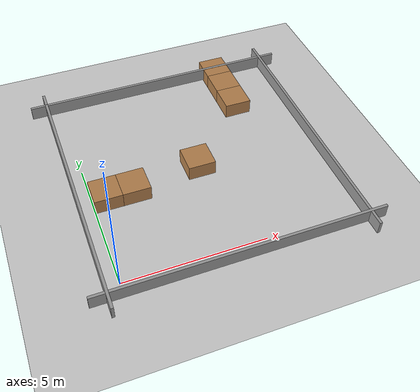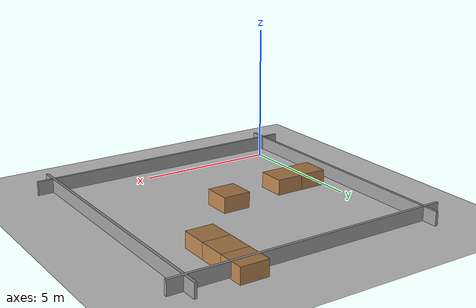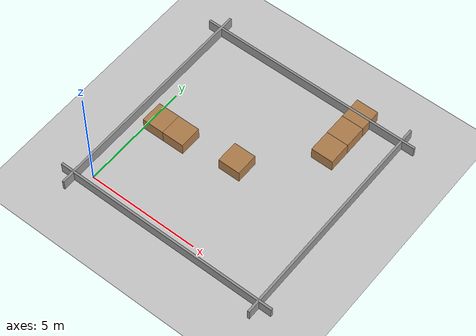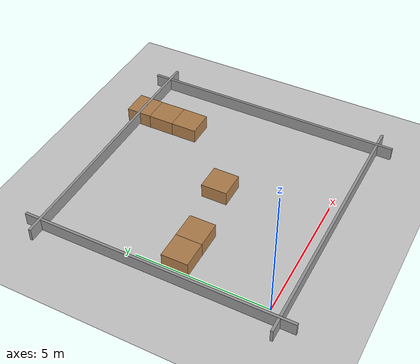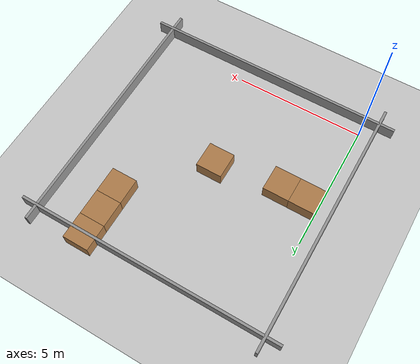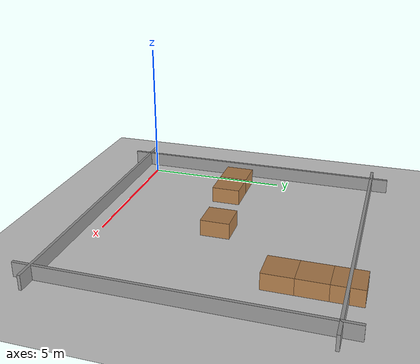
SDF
<sdf version="1.7">
 <world name="default">
  <light name="sun" type="directional">
   <pose>0 0 10 0 -0 0</pose>
   <diffuse>0.8 0.8 0.8 1</diffuse>
   <specular>0.1 0.1 0.1 1</specular>
   <attenuation>
    <range>1000</range>
    <constant>0.9</constant>
    <linear>0.01</linear>
    <quadratic>0.001</quadratic>
   </attenuation>
   <direction>-0.5 0.5 -1</direction>
   <spot><inner_angle>0</inner_angle><outer_angle>0</outer_angle><falloff>0</falloff></spot>
  </light>
  <model name="ground_plane">
   <pose>7.5 2.5 0 0 -0 0</pose>
   <static>1</static>
   <link name="link">
    <collision name="collision">
     <geometry><plane><normal>0 0 1</normal><size>100 100</size></plane></geometry>
     <surface><friction><ode><mu>100</mu><mu2>50</mu2></ode></friction></surface>
    </collision>
    <visual name="visual">
     <cast_shadows>0</cast_shadows>
     <geometry><plane><normal>0 0 1</normal><size>100 100</size></plane></geometry>
     <material>
      <script><uri>file://media/materials/scripts/gazebo.material</uri><name>Gazebo/Grey</name></script>
     </material>
    </visual>
   </link>
  </model>
  <gravity>0 0 -9.8</gravity>
  <magnetic_field>6e-06 2.3e-05 -4.2e-05</magnetic_field>
  <atmosphere type="adiabatic"/>
  <physics type="ode">
   <real_time_update_rate>1000.0</real_time_update_rate>
   <max_step_size>0.001</max_step_size>
   <real_time_factor>1</real_time_factor>
   <ode>
    <solver>
     <type>quick</type>
     <iters>150</iters>
     <precon_iters>0</precon_iters>
     <sor>1.400000</sor>
     <use_dynamic_moi_rescaling>1</use_dynamic_moi_rescaling>
    </solver>
    <constraints>
     <cfm>0.00001</cfm>
     <erp>0.2</erp>
     <contact_max_correcting_vel>2000.000000</contact_max_correcting_vel>
     <contact_surface_layer>0.01000</contact_surface_layer>
    </constraints>
   </ode>
  </physics>
  <scene><ambient>0.4 0.4 0.4 1</ambient><background>0.7 0.7 0.7 1</background><shadows>1</shadows></scene>
  <spherical_coordinates>
   <surface_model>EARTH_WGS84</surface_model>
   <latitude_deg>0</latitude_deg>
   <longitude_deg>0</longitude_deg>
   <elevation>0</elevation>
   <heading_deg>0</heading_deg>
  </spherical_coordinates>
  <model name="grey_wall">
   <static>1</static>
   <link name="link">
    <pose>0 0 1.4 0 -0 0</pose>
    <collision name="collision"><geometry><box><size>10.2 0.1 0.5</size></box></geometry></collision>
    <visual name="visual">
     <cast_shadows>0</cast_shadows>
     <geometry><box><size>10.2 0.1 0.5</size></box></geometry>
     <material>
      <script>
       <uri>model://grey_wall/materials/scripts</uri>
       <uri>model://grey_wall/materials/textures</uri>
       <name>vrc/grey_wall</name>
      </script>
     </material>
    </visual>
   </link>
   <pose>4 8.5 -1.1 0 -0 0</pose>
  </model>
  <model name="grey_wall_0">
   <static>1</static>
   <link name="link">
    <pose>0 0 1.4 0 -0 0</pose>
    <collision name="collision"><geometry><box><size>10.2 0.1 0.5</size></box></geometry></collision>
    <visual name="visual">
     <cast_shadows>0</cast_shadows>
     <geometry><box><size>10.2 0.1 0.5</size></box></geometry>
     <material>
      <script>
       <uri>model://grey_wall/materials/scripts</uri>
       <uri>model://grey_wall/materials/textures</uri>
       <name>vrc/grey_wall</name>
      </script>
     </material>
    </visual>
   </link>
   <pose>8.5 4 -1.1 0 -0 1.57</pose>
  </model>
  <model name="grey_wall_0_clone">
   <static>1</static>
   <link name="link">
    <pose>0 0 1.4 0 -0 0</pose>
    <collision name="collision"><geometry><box><size>10.2 0.1 0.5</size></box></geometry></collision>
    <visual name="visual">
     <cast_shadows>0</cast_shadows>
     <geometry><box><size>10.2 0.1 0.5</size></box></geometry>
     <material>
      <script>
       <uri>model://grey_wall/materials/scripts</uri>
       <uri>model://grey_wall/materials/textures</uri>
       <name>vrc/grey_wall</name>
      </script>
     </material>
    </visual>
   </link>
   <pose>-0.5 4 -1.1 0 -0 1.57</pose>
  </model>
  <model name="grey_wall_clone">
   <static>1</static>
   <link name="link">
    <pose>0 0 1.4 0 -0 0</pose>
    <collision name="collision"><geometry><box><size>10.2 0.1 0.5</size></box></geometry></collision>
    <visual name="visual">
     <cast_shadows>0</cast_shadows>
     <geometry><box><size>10.2 0.1 0.5</size></box></geometry>
     <material>
      <script>
       <uri>model://grey_wall/materials/scripts</uri>
       <uri>model://grey_wall/materials/textures</uri>
       <name>vrc/grey_wall</name>
      </script>
     </material>
    </visual>
   </link>
   <pose>4 -0.5 -1.1 0 -0 0</pose>
  </model>
  <model name="wood_cube_10cm_clone_1">
   <link name="link">
    <pose>1.50796 -2.63412 0.05 0 -0 0</pose>
    <inertial>
     <mass>0.5167</mass>
     <inertia>
      <ixx>0.00086117</ixx>
      <ixy>0</ixy>
      <ixz>0</ixz>
      <iyy>0.00086117</iyy>
      <iyz>0</iyz>
      <izz>0.00086117</izz>
     </inertia>
    </inertial>
    <visual name="visual">
     <geometry><box><size>1 1 1</size></box></geometry>
     <material>
      <script><uri>file://media/materials/scripts/gazebo.material</uri><name>Gazebo/Wood</name></script>
      <shader type="pixel"><normal_map>__default__</normal_map></shader>
      <ambient>1 1 1 1</ambient>
      <diffuse>1 1 1 1</diffuse>
      <specular>0.2 0.2 0.2 1</specular>
      <emissive>0 0 0 1</emissive>
     </material>
    </visual>
    <collision name="collision">
     <geometry><box><size>1.5 1.5 0.8</size></box></geometry>
     <surface>
      <friction>
       <ode><mu>1</mu><mu2>1</mu2><fdir1>0 0 0</fdir1><slip1>0</slip1><slip2>0</slip2></ode>
       <torsional>
        <coefficient>1</coefficient>
        <patch_radius>0</patch_radius>
        <surface_radius>0.01</surface_radius>
        <use_patch_radius>0</use_patch_radius>
        <ode><slip>0</slip></ode>
       </torsional>
      </friction>
      <bounce><restitution_coefficient>0</restitution_coefficient><threshold>1e+06</threshold></bounce>
      <contact>
       <collide_without_contact>0</collide_without_contact>
       <collide_without_contact_bitmask>1</collide_without_contact_bitmask>
       <collide_bitmask>1</collide_bitmask>
       <ode>
        <soft_cfm>0</soft_cfm>
        <soft_erp>0.2</soft_erp>
        <kp>100000</kp>
        <kd>100</kd>
        <max_vel>100</max_vel>
        <min_depth>0.001</min_depth>
       </ode>
       <bullet>
        <split_impulse>1</split_impulse>
        <split_impulse_penetration_threshold>-0.01</split_impulse_penetration_threshold>
        <soft_cfm>0</soft_cfm>
        <soft_erp>0.2</soft_erp>
        <kp>100000</kp>
        <kd>100</kd>
       </bullet>
      </contact>
     </surface>
    </collision>
   </link>
   <static>1</static>
   <pose>2.5 6.5 -0.001013 0 -0 0</pose>
  </model>
  <model name="wood_cube_10cm_clone_0">
   <link name="link">
    <pose>0 0 0.05 0 -0 0</pose>
    <inertial>
     <mass>0.5167</mass>
     <inertia>
      <ixx>0.00086117</ixx>
      <ixy>0</ixy>
      <ixz>0</ixz>
      <iyy>0.00086117</iyy>
      <iyz>0</iyz>
      <izz>0.00086117</izz>
     </inertia>
    </inertial>
    <visual name="visual">
     <geometry><box><size>1 1 1</size></box></geometry>
     <material>
      <script><uri>file://media/materials/scripts/gazebo.material</uri><name>Gazebo/Wood</name></script>
      <shader type="pixel"><normal_map>__default__</normal_map></shader>
      <ambient>1 1 1 1</ambient>
      <diffuse>1 1 1 1</diffuse>
      <specular>0.2 0.2 0.2 1</specular>
      <emissive>0 0 0 1</emissive>
     </material>
    </visual>
    <collision name="collision">
     <geometry><box><size>1.5 1.5 0.8</size></box></geometry>
     <surface>
      <friction>
       <ode><mu>1</mu><mu2>1</mu2><fdir1>0 0 0</fdir1><slip1>0</slip1><slip2>0</slip2></ode>
       <torsional>
        <coefficient>1</coefficient>
        <patch_radius>0</patch_radius>
        <surface_radius>0.01</surface_radius>
        <use_patch_radius>0</use_patch_radius>
        <ode><slip>0</slip></ode>
       </torsional>
      </friction>
      <bounce><restitution_coefficient>0</restitution_coefficient><threshold>1e+06</threshold></bounce>
      <contact>
       <collide_without_contact>0</collide_without_contact>
       <collide_without_contact_bitmask>1</collide_without_contact_bitmask>
       <collide_bitmask>1</collide_bitmask>
       <ode>
        <soft_cfm>0</soft_cfm>
        <soft_erp>0.2</soft_erp>
        <kp>100000</kp>
        <kd>100</kd>
        <max_vel>100</max_vel>
        <min_depth>0.001</min_depth>
       </ode>
       <bullet>
        <split_impulse>1</split_impulse>
        <split_impulse_penetration_threshold>-0.01</split_impulse_penetration_threshold>
        <soft_cfm>0</soft_cfm>
        <soft_erp>0.2</soft_erp>
        <kp>100000</kp>
        <kd>100</kd>
       </bullet>
      </contact>
     </surface>
    </collision>
   </link>
   <static>1</static>
   <pose>0.5 3.5 -0.001013 0 -0 0</pose>
  </model>
  <model name="wood_cube_10cm_clone_0_clone">
   <link name="link">
    <pose>0 0 0.05 0 -0 0</pose>
    <inertial>
     <mass>0.5167</mass>
     <inertia>
      <ixx>0.00086117</ixx>
      <ixy>0</ixy>
      <ixz>0</ixz>
      <iyy>0.00086117</iyy>
      <iyz>0</iyz>
      <izz>0.00086117</izz>
     </inertia>
    </inertial>
    <visual name="visual">
     <geometry><box><size>1 1 1</size></box></geometry>
     <material>
      <script><uri>file://media/materials/scripts/gazebo.material</uri><name>Gazebo/Wood</name></script>
      <shader type="pixel"><normal_map>__default__</normal_map></shader>
      <ambient>1 1 1 1</ambient>
      <diffuse>1 1 1 1</diffuse>
      <specular>0.2 0.2 0.2 1</specular>
      <emissive>0 0 0 1</emissive>
     </material>
    </visual>
    <collision name="collision">
     <geometry><box><size>1.5 1.5 0.8</size></box></geometry>
     <surface>
      <friction>
       <ode><mu>1</mu><mu2>1</mu2><fdir1>0 0 0</fdir1><slip1>0</slip1><slip2>0</slip2></ode>
       <torsional>
        <coefficient>1</coefficient>
        <patch_radius>0</patch_radius>
        <surface_radius>0.01</surface_radius>
        <use_patch_radius>0</use_patch_radius>
        <ode><slip>0</slip></ode>
       </torsional>
      </friction>
      <bounce><restitution_coefficient>0</restitution_coefficient><threshold>1e+06</threshold></bounce>
      <contact>
       <collide_without_contact>0</collide_without_contact>
       <collide_without_contact_bitmask>1</collide_without_contact_bitmask>
       <collide_bitmask>1</collide_bitmask>
       <ode>
        <soft_cfm>0</soft_cfm>
        <soft_erp>0.2</soft_erp>
        <kp>100000</kp>
        <kd>100</kd>
        <max_vel>100</max_vel>
        <min_depth>0.001</min_depth>
       </ode>
       <bullet>
        <split_impulse>1</split_impulse>
        <split_impulse_penetration_threshold>-0.01</split_impulse_penetration_threshold>
        <soft_cfm>0</soft_cfm>
        <soft_erp>0.2</soft_erp>
        <kp>100000</kp>
        <kd>100</kd>
       </bullet>
      </contact>
     </surface>
    </collision>
   </link>
   <static>1</static>
   <pose>1.5 3.5 -0.001013 0 -0 0</pose>
  </model>
  <model name="wood_cube_10cm_clone_1_clone">
   <link name="link">
    <pose>1 1 0.05 0 -0 0</pose>
    <inertial>
     <mass>0.5167</mass>
     <inertia>
      <ixx>0.00086117</ixx>
      <ixy>0</ixy>
      <ixz>0</ixz>
      <iyy>0.00086117</iyy>
      <iyz>0</iyz>
      <izz>0.00086117</izz>
     </inertia>
    </inertial>
    <visual name="visual">
     <geometry><box><size>1 1 1</size></box></geometry>
     <material>
      <script><uri>file://media/materials/scripts/gazebo.material</uri><name>Gazebo/Wood</name></script>
      <shader type="pixel"><normal_map>__default__</normal_map></shader>
      <ambient>1 1 1 1</ambient>
      <diffuse>1 1 1 1</diffuse>
      <specular>0.2 0.2 0.2 1</specular>
      <emissive>0 0 0 1</emissive>
     </material>
    </visual>
    <collision name="collision">
     <geometry><box><size>1.5 1.5 0.8</size></box></geometry>
     <surface>
      <friction>
       <ode><mu>1</mu><mu2>1</mu2><fdir1>0 0 0</fdir1><slip1>0</slip1><slip2>0</slip2></ode>
       <torsional>
        <coefficient>1</coefficient>
        <patch_radius>0</patch_radius>
        <surface_radius>0.01</surface_radius>
        <use_patch_radius>0</use_patch_radius>
        <ode><slip>0</slip></ode>
       </torsional>
      </friction>
      <bounce><restitution_coefficient>0</restitution_coefficient><threshold>1e+06</threshold></bounce>
      <contact>
       <collide_without_contact>0</collide_without_contact>
       <collide_without_contact_bitmask>1</collide_without_contact_bitmask>
       <collide_bitmask>1</collide_bitmask>
       <ode>
        <soft_cfm>0</soft_cfm>
        <soft_erp>0.2</soft_erp>
        <kp>100000</kp>
        <kd>100</kd>
        <max_vel>100</max_vel>
        <min_depth>0.001</min_depth>
       </ode>
       <bullet>
        <split_impulse>1</split_impulse>
        <split_impulse_penetration_threshold>-0.01</split_impulse_penetration_threshold>
        <soft_cfm>0</soft_cfm>
        <soft_erp>0.2</soft_erp>
        <kp>100000</kp>
        <kd>100</kd>
       </bullet>
      </contact>
     </surface>
    </collision>
   </link>
   <static>1</static>
   <pose>5.5 5.5 -0.001013 0 -0 0</pose>
  </model>
  <model name="wood_cube_10cm_clone_1_clone_clone">
   <link name="link">
    <pose>1 1 0.05 0 -0 0</pose>
    <inertial>
     <mass>0.5167</mass>
     <inertia>
      <ixx>0.00086117</ixx>
      <ixy>0</ixy>
      <ixz>0</ixz>
      <iyy>0.00086117</iyy>
      <iyz>0</iyz>
      <izz>0.00086117</izz>
     </inertia>
    </inertial>
    <visual name="visual">
     <geometry><box><size>1 1 1</size></box></geometry>
     <material>
      <script><uri>file://media/materials/scripts/gazebo.material</uri><name>Gazebo/Wood</name></script>
      <shader type="pixel"><normal_map>__default__</normal_map></shader>
      <ambient>1 1 1 1</ambient>
      <diffuse>1 1 1 1</diffuse>
      <specular>0.2 0.2 0.2 1</specular>
      <emissive>0 0 0 1</emissive>
     </material>
    </visual>
    <collision name="collision">
     <geometry><box><size>1.5 1.5 0.8</size></box></geometry>
     <surface>
      <friction>
       <ode><mu>1</mu><mu2>1</mu2><fdir1>0 0 0</fdir1><slip1>0</slip1><slip2>0</slip2></ode>
       <torsional>
        <coefficient>1</coefficient>
        <patch_radius>0</patch_radius>
        <surface_radius>0.01</surface_radius>
        <use_patch_radius>0</use_patch_radius>
        <ode><slip>0</slip></ode>
       </torsional>
      </friction>
      <bounce><restitution_coefficient>0</restitution_coefficient><threshold>1e+06</threshold></bounce>
      <contact>
       <collide_without_contact>0</collide_without_contact>
       <collide_without_contact_bitmask>1</collide_without_contact_bitmask>
       <collide_bitmask>1</collide_bitmask>
       <ode>
        <soft_cfm>0</soft_cfm>
        <soft_erp>0.2</soft_erp>
        <kp>100000</kp>
        <kd>100</kd>
        <max_vel>100</max_vel>
        <min_depth>0.001</min_depth>
       </ode>
       <bullet>
        <split_impulse>1</split_impulse>
        <split_impulse_penetration_threshold>-0.01</split_impulse_penetration_threshold>
        <soft_cfm>0</soft_cfm>
        <soft_erp>0.2</soft_erp>
        <kp>100000</kp>
        <kd>100</kd>
       </bullet>
      </contact>
     </surface>
    </collision>
   </link>
   <static>1</static>
   <pose>5.5 6.5 -0.001013 0 -0 0</pose>
  </model>
  <model name="wood_cube_10cm_clone_1_clone_clone_0">
   <link name="link">
    <pose>1 1 0.05 0 -0 0</pose>
    <inertial>
     <mass>0.5167</mass>
     <inertia>
      <ixx>0.00086117</ixx>
      <ixy>0</ixy>
      <ixz>0</ixz>
      <iyy>0.00086117</iyy>
      <iyz>0</iyz>
      <izz>0.00086117</izz>
     </inertia>
    </inertial>
    <visual name="visual">
     <geometry><box><size>1 1 1</size></box></geometry>
     <material>
      <script><uri>file://media/materials/scripts/gazebo.material</uri><name>Gazebo/Wood</name></script>
      <shader type="pixel"><normal_map>__default__</normal_map></shader>
      <ambient>1 1 1 1</ambient>
      <diffuse>1 1 1 1</diffuse>
      <specular>0.2 0.2 0.2 1</specular>
      <emissive>0 0 0 1</emissive>
     </material>
    </visual>
    <collision name="collision">
     <geometry><box><size>1.5 1.5 0.8</size></box></geometry>
     <surface>
      <friction>
       <ode><mu>1</mu><mu2>1</mu2><fdir1>0 0 0</fdir1><slip1>0</slip1><slip2>0</slip2></ode>
       <torsional>
        <coefficient>1</coefficient>
        <patch_radius>0</patch_radius>
        <surface_radius>0.01</surface_radius>
        <use_patch_radius>0</use_patch_radius>
        <ode><slip>0</slip></ode>
       </torsional>
      </friction>
      <bounce><restitution_coefficient>0</restitution_coefficient><threshold>1e+06</threshold></bounce>
      <contact>
       <collide_without_contact>0</collide_without_contact>
       <collide_without_contact_bitmask>1</collide_without_contact_bitmask>
       <collide_bitmask>1</collide_bitmask>
       <ode>
        <soft_cfm>0</soft_cfm>
        <soft_erp>0.2</soft_erp>
        <kp>100000</kp>
        <kd>100</kd>
        <max_vel>100</max_vel>
        <min_depth>0.001</min_depth>
       </ode>
       <bullet>
        <split_impulse>1</split_impulse>
        <split_impulse_penetration_threshold>-0.01</split_impulse_penetration_threshold>
        <soft_cfm>0</soft_cfm>
        <soft_erp>0.2</soft_erp>
        <kp>100000</kp>
        <kd>100</kd>
       </bullet>
      </contact>
     </surface>
    </collision>
   </link>
   <static>1</static>
   <pose>5.5 7.5 -0.001013 0 -0 0</pose>
  </model>
 </world>
</sdf>
